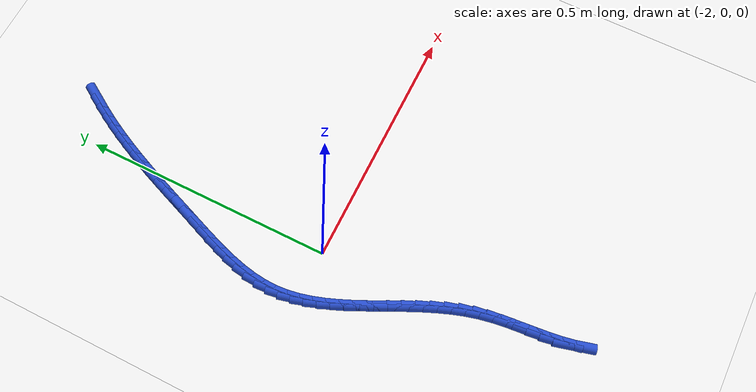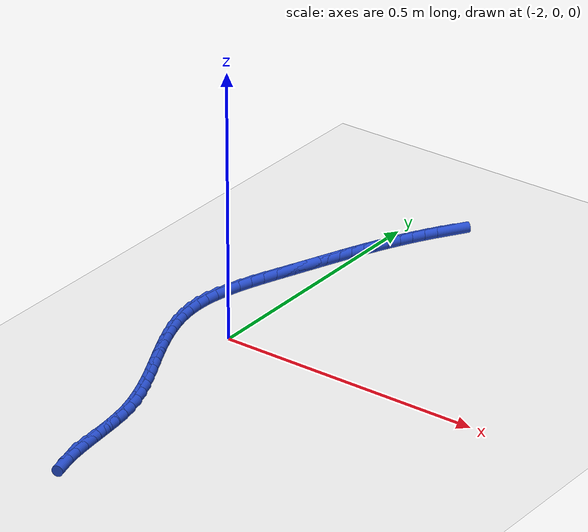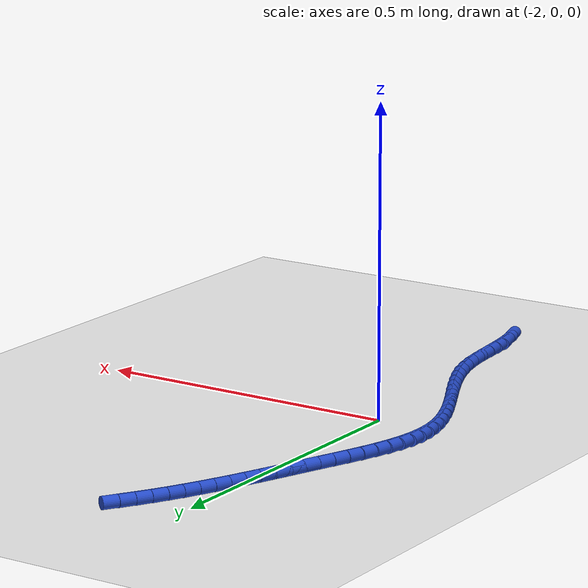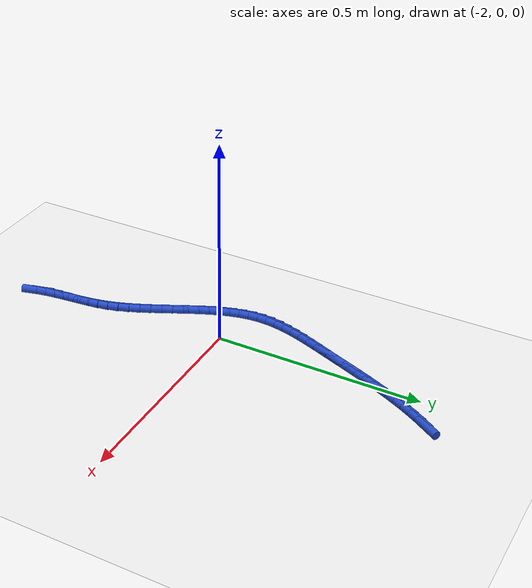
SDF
<sdf version="1.6">
 <world name="default">
  <model name="ground_plane">
   <static>1</static>
   <link name="link">
    <collision name="collision">
     <geometry><plane><normal>0 0 1</normal><size>100 100</size></plane></geometry>
     <surface><friction><ode><mu>100</mu><mu2>50</mu2></ode></friction></surface>
    </collision>
    <visual name="visual">
     <cast_shadows>0</cast_shadows>
     <geometry><plane><normal>0 0 1</normal><size>100 100</size></plane></geometry>
     <material>
      <script><uri>file://media/materials/scripts/gazebo.material</uri><name>Gazebo/WhiteGlow</name></script>
     </material>
    </visual>
   </link>
  </model>
  <model name="line">
   <link name="link_107">
    <pose>-1.918793251084173 0.5393607338823246 0.01 0 1.57 1.006000413616118</pose>
    <collision name="collision">
     <geometry><cylinder><radius>0.01</radius><length>0.08</length></cylinder></geometry>
    </collision>
    <visual name="visual">
     <material>
      <script><name>Gazebo/Blue</name><uri>file://media/materials/scripts/gazebo.material</uri></script>
     </material>
     <geometry><cylinder><radius>0.01</radius><length>0.08</length></cylinder></geometry>
    </visual>
   </link>
   <link name="link_108">
    <pose>-1.9320427246365095 0.5184509923763663 0.01 0 1.57 1.0392437055709665</pose>
    <collision name="collision">
     <geometry><cylinder><radius>0.01</radius><length>0.08</length></cylinder></geometry>
    </collision>
    <visual name="visual">
     <material>
      <script><name>Gazebo/Blue</name><uri>file://media/materials/scripts/gazebo.material</uri></script>
     </material>
     <geometry><cylinder><radius>0.01</radius><length>0.08</length></cylinder></geometry>
    </visual>
   </link>
   <link name="link_109">
    <pose>-1.9446033344854374 0.4970895762051793 0.01 0 1.57 1.069397892536326</pose>
    <collision name="collision">
     <geometry><cylinder><radius>0.01</radius><length>0.08</length></cylinder></geometry>
    </collision>
    <visual name="visual">
     <material>
      <script><name>Gazebo/Blue</name><uri>file://media/materials/scripts/gazebo.material</uri></script>
     </material>
     <geometry><cylinder><radius>0.01</radius><length>0.08</length></cylinder></geometry>
    </visual>
   </link>
   <link name="link_110">
    <pose>-1.9565434428886892 0.4753058143193223 0.01 0 1.57 1.0964002373645325</pose>
    <collision name="collision">
     <geometry><cylinder><radius>0.01</radius><length>0.08</length></cylinder></geometry>
    </collision>
    <visual name="visual">
     <material>
      <script><name>Gazebo/Blue</name><uri>file://media/materials/scripts/gazebo.material</uri></script>
     </material>
     <geometry><cylinder><radius>0.01</radius><length>0.08</length></cylinder></geometry>
    </visual>
   </link>
   <link name="link_111">
    <pose>-1.967931412103998 0.45312903566935486 0.01 0 1.57 1.1202243368676432</pose>
    <collision name="collision">
     <geometry><cylinder><radius>0.01</radius><length>0.08</length></cylinder></geometry>
    </collision>
    <visual name="visual">
     <material>
      <script><name>Gazebo/Blue</name><uri>file://media/materials/scripts/gazebo.material</uri></script>
     </material>
     <geometry><cylinder><radius>0.01</radius><length>0.08</length></cylinder></geometry>
    </visual>
   </link>
   <link name="link_112">
    <pose>-1.9788356043890953 0.4305885692058356 0.01 0 1.57 1.140872114245672</pose>
    <collision name="collision">
     <geometry><cylinder><radius>0.01</radius><length>0.08</length></cylinder></geometry>
    </collision>
    <visual name="visual">
     <material>
      <script><name>Gazebo/Blue</name><uri>file://media/materials/scripts/gazebo.material</uri></script>
     </material>
     <geometry><cylinder><radius>0.01</radius><length>0.08</length></cylinder></geometry>
    </visual>
   </link>
   <link name="link_113">
    <pose>-1.9893243820017144 0.4077137438793232 0.01 0 1.57 1.1583663851227726</pose>
    <collision name="collision">
     <geometry><cylinder><radius>0.01</radius><length>0.08</length></cylinder></geometry>
    </collision>
    <visual name="visual">
     <material>
      <script><name>Gazebo/Blue</name><uri>file://media/materials/scripts/gazebo.material</uri></script>
     </material>
     <geometry><cylinder><radius>0.01</radius><length>0.08</length></cylinder></geometry>
    </visual>
   </link>
   <link name="link_114">
    <pose>-1.9994661071995878 0.3845338886403765 0.01 0 1.57 1.1727443399577253</pose>
    <collision name="collision">
     <geometry><cylinder><radius>0.01</radius><length>0.08</length></cylinder></geometry>
    </collision>
    <visual name="visual">
     <material>
      <script><name>Gazebo/Blue</name><uri>file://media/materials/scripts/gazebo.material</uri></script>
     </material>
     <geometry><cylinder><radius>0.01</radius><length>0.08</length></cylinder></geometry>
    </visual>
   </link>
   <link name="link_115">
    <pose>-2.009329142240448 0.36107833243955423 0.01 0 1.57 1.1840521106364135</pose>
    <collision name="collision">
     <geometry><cylinder><radius>0.01</radius><length>0.08</length></cylinder></geometry>
    </collision>
    <visual name="visual">
     <material>
      <script><name>Gazebo/Blue</name><uri>file://media/materials/scripts/gazebo.material</uri></script>
     </material>
     <geometry><cylinder><radius>0.01</radius><length>0.08</length></cylinder></geometry>
    </visual>
   </link>
   <link name="link_116">
    <pose>-2.018981849382027 0.3373764042274157 0.01 0 1.57 1.1923404629811332</pose>
    <collision name="collision">
     <geometry><cylinder><radius>0.01</radius><length>0.08</length></cylinder></geometry>
    </collision>
    <visual name="visual">
     <material>
      <script><name>Gazebo/Blue</name><uri>file://media/materials/scripts/gazebo.material</uri></script>
     </material>
     <geometry><cylinder><radius>0.01</radius><length>0.08</length></cylinder></geometry>
    </visual>
   </link>
   <link name="link_117">
    <pose>-2.0284925908820584 0.31345743295451955 0.01 0 1.57 1.197661576549802</pose>
    <collision name="collision">
     <geometry><cylinder><radius>0.01</radius><length>0.08</length></cylinder></geometry>
    </collision>
    <visual name="visual">
     <material>
      <script><name>Gazebo/Blue</name><uri>file://media/materials/scripts/gazebo.material</uri></script>
     </material>
     <geometry><cylinder><radius>0.01</radius><length>0.08</length></cylinder></geometry>
    </visual>
   </link>
   <link name="link_118">
    <pose>-2.037929728998274 0.28935074757142426 0.01 0 1.57 1.2000668296648735</pose>
    <collision name="collision">
     <geometry><cylinder><radius>0.01</radius><length>0.08</length></cylinder></geometry>
    </collision>
    <visual name="visual">
     <material>
      <script><name>Gazebo/Blue</name><uri>file://media/materials/scripts/gazebo.material</uri></script>
     </material>
     <geometry><cylinder><radius>0.01</radius><length>0.08</length></cylinder></geometry>
    </visual>
   </link>
   <link name="link_119">
    <pose>-2.047361625988406 0.26508567702868935 0.01 0 1.57 1.1996311330144207</pose>
    <collision name="collision">
     <geometry><cylinder><radius>0.01</radius><length>0.08</length></cylinder></geometry>
    </collision>
    <visual name="visual">
     <material>
      <script><name>Gazebo/Blue</name><uri>file://media/materials/scripts/gazebo.material</uri></script>
     </material>
     <geometry><cylinder><radius>0.01</radius><length>0.08</length></cylinder></geometry>
    </visual>
   </link>
   <link name="link_120">
    <pose>-2.056855913181903 0.2406915776312176 0.01 0 1.57 1.20052782327781</pose>
    <collision name="collision">
     <geometry><cylinder><radius>0.01</radius><length>0.08</length></cylinder></geometry>
    </collision>
    <visual name="visual">
     <material>
      <script><name>Gazebo/Blue</name><uri>file://media/materials/scripts/gazebo.material</uri></script>
     </material>
     <geometry><cylinder><radius>0.01</radius><length>0.08</length></cylinder></geometry>
    </visual>
   </link>
   <link name="link_121">
    <pose>-2.0663619943500726 0.2162022302456472 0.01 0 1.57 1.211435941647568</pose>
    <collision name="collision">
     <geometry><cylinder><radius>0.01</radius><length>0.08</length></cylinder></geometry>
    </collision>
    <visual name="visual">
     <material>
      <script><name>Gazebo/Blue</name><uri>file://media/materials/scripts/gazebo.material</uri></script>
     </material>
     <geometry><cylinder><radius>0.01</radius><length>0.08</length></cylinder></geometry>
    </visual>
   </link>
   <link name="link_122">
    <pose>-2.075581585088444 0.1916606852493978 0.01 0 1.57 1.2337104875633544</pose>
    <collision name="collision">
     <geometry><cylinder><radius>0.01</radius><length>0.08</length></cylinder></geometry>
    </collision>
    <visual name="visual">
     <material>
      <script><name>Gazebo/Blue</name><uri>file://media/materials/scripts/gazebo.material</uri></script>
     </material>
     <geometry><cylinder><radius>0.01</radius><length>0.08</length></cylinder></geometry>
    </visual>
   </link>
   <link name="link_123">
    <pose>-2.0841852473442866 0.16711115891760464 0.01 0 1.57 1.2679897978094745</pose>
    <collision name="collision">
     <geometry><cylinder><radius>0.01</radius><length>0.08</length></cylinder></geometry>
    </collision>
    <visual name="visual">
     <material>
      <script><name>Gazebo/Blue</name><uri>file://media/materials/scripts/gazebo.material</uri></script>
     </material>
     <geometry><cylinder><radius>0.01</radius><length>0.08</length></cylinder></geometry>
    </visual>
   </link>
   <link name="link_124">
    <pose>-2.0918435430648703 0.1425978675254039 0.01 0 1.57 1.3152420034090673</pose>
    <collision name="collision">
     <geometry><cylinder><radius>0.01</radius><length>0.08</length></cylinder></geometry>
    </collision>
    <visual name="visual">
     <material>
      <script><name>Gazebo/Blue</name><uri>file://media/materials/scripts/gazebo.material</uri></script>
     </material>
     <geometry><cylinder><radius>0.01</radius><length>0.08</length></cylinder></geometry>
    </visual>
   </link>
   <link name="link_125">
    <pose>-2.098227034197465 0.11816502734793072 0.01 0 1.57 1.3766617581028535</pose>
    <collision name="collision">
     <geometry><cylinder><radius>0.01</radius><length>0.08</length></cylinder></geometry>
    </collision>
    <visual name="visual">
     <material>
      <script><name>Gazebo/Blue</name><uri>file://media/materials/scripts/gazebo.material</uri></script>
     </material>
     <geometry><cylinder><radius>0.01</radius><length>0.08</length></cylinder></geometry>
    </visual>
   </link>
   <link name="link_126">
    <pose>-2.103006282689342 0.09385685466032037 0.01 0 1.57 1.4534566661429862</pose>
    <collision name="collision">
     <geometry><cylinder><radius>0.01</radius><length>0.08</length></cylinder></geometry>
    </collision>
    <visual name="visual">
     <material>
      <script><name>Gazebo/Blue</name><uri>file://media/materials/scripts/gazebo.material</uri></script>
     </material>
     <geometry><cylinder><radius>0.01</radius><length>0.08</length></cylinder></geometry>
    </visual>
   </link>
   <link name="link_127">
    <pose>-2.10585185048777 0.06971756573770896 0.01 0 1.57 1.546447447464825</pose>
    <collision name="collision">
     <geometry><cylinder><radius>0.01</radius><length>0.08</length></cylinder></geometry>
    </collision>
    <visual name="visual">
     <material>
      <script><name>Gazebo/Blue</name><uri>file://media/materials/scripts/gazebo.material</uri></script>
     </material>
     <geometry><cylinder><radius>0.01</radius><length>0.08</length></cylinder></geometry>
    </visual>
   </link>
   <link name="link_128">
    <pose>-2.1064345423910544 0.0457913415479876 0.01 0 1.57 -1.4924158110859793</pose>
    <collision name="collision">
     <geometry><cylinder><radius>0.01</radius><length>0.08</length></cylinder></geometry>
    </collision>
    <visual name="visual">
     <material>
      <script><name>Gazebo/Blue</name><uri>file://media/materials/scripts/gazebo.material</uri></script>
     </material>
     <geometry><cylinder><radius>0.01</radius><length>0.08</length></cylinder></geometry>
    </visual>
   </link>
   <link name="link_129">
    <pose>-2.104573849349211 0.022100746110615608 0.01 0 1.57 -1.3986866702521137</pose>
    <collision name="collision">
     <geometry><cylinder><radius>0.01</radius><length>0.08</length></cylinder></geometry>
    </collision>
    <visual name="visual">
     <material>
      <script><name>Gazebo/Blue</name><uri>file://media/materials/scripts/gazebo.material</uri></script>
     </material>
     <geometry><cylinder><radius>0.01</radius><length>0.08</length></cylinder></geometry>
    </visual>
   </link>
   <link name="link_130">
    <pose>-2.100490468640679 -0.001389986509768679 0.01 0 1.57 -1.3183993330269068</pose>
    <collision name="collision">
     <geometry><cylinder><radius>0.01</radius><length>0.08</length></cylinder></geometry>
    </collision>
    <visual name="visual">
     <material>
      <script><name>Gazebo/Blue</name><uri>file://media/materials/scripts/gazebo.material</uri></script>
     </material>
     <geometry><cylinder><radius>0.01</radius><length>0.08</length></cylinder></geometry>
    </visual>
   </link>
   <link name="link_131">
    <pose>-2.094472092748947 -0.02472636244205622 0.01 0 1.57 -1.2520256575604412</pose>
    <collision name="collision">
     <geometry><cylinder><radius>0.01</radius><length>0.08</length></cylinder></geometry>
    </collision>
    <visual name="visual">
     <material>
      <script><name>Gazebo/Blue</name><uri>file://media/materials/scripts/gazebo.material</uri></script>
     </material>
     <geometry><cylinder><radius>0.01</radius><length>0.08</length></cylinder></geometry>
    </visual>
   </link>
   <link name="link_132">
    <pose>-2.0868064141575067 -0.04795388781513795 0.01 0 1.57 -1.1992678554582785</pose>
    <collision name="collision">
     <geometry><cylinder><radius>0.01</radius><length>0.08</length></cylinder></geometry>
    </collision>
    <visual name="visual">
     <material>
      <script><name>Gazebo/Blue</name><uri>file://media/materials/scripts/gazebo.material</uri></script>
     </material>
     <geometry><cylinder><radius>0.01</radius><length>0.08</length></cylinder></geometry>
    </visual>
   </link>
   <link name="link_133">
    <pose>-2.0777811253498455 -0.07111806875790544 0.01 0 1.57 -1.159449536767736</pose>
    <collision name="collision">
     <geometry><cylinder><radius>0.01</radius><length>0.08</length></cylinder></geometry>
    </collision>
    <visual name="visual">
     <material>
      <script><name>Gazebo/Blue</name><uri>file://media/materials/scripts/gazebo.material</uri></script>
     </material>
     <geometry><cylinder><radius>0.01</radius><length>0.08</length></cylinder></geometry>
    </visual>
   </link>
   <link name="link_134">
    <pose>-2.0676839188094562 -0.09426441139924839 0.01 0 1.57 -1.1318014260249172</pose>
    <collision name="collision">
     <geometry><cylinder><radius>0.01</radius><length>0.08</length></cylinder></geometry>
    </collision>
    <visual name="visual">
     <material>
      <script><name>Gazebo/Blue</name><uri>file://media/materials/scripts/gazebo.material</uri></script>
     </material>
     <geometry><cylinder><radius>0.01</radius><length>0.08</length></cylinder></geometry>
    </visual>
   </link>
   <link name="link_135">
    <pose>-2.0568024870198274 -0.11743842186805833 0.01 0 1.57 -1.1156371178057904</pose>
    <collision name="collision">
     <geometry><cylinder><radius>0.01</radius><length>0.08</length></cylinder></geometry>
    </collision>
    <visual name="visual">
     <material>
      <script><name>Gazebo/Blue</name><uri>file://media/materials/scripts/gazebo.material</uri></script>
     </material>
     <geometry><cylinder><radius>0.01</radius><length>0.08</length></cylinder></geometry>
    </visual>
   </link>
   <link name="link_136">
    <pose>-2.0454245224644487 -0.14068560629322618 0.01 0 1.57 -1.1104453393990068</pose>
    <collision name="collision">
     <geometry><cylinder><radius>0.01</radius><length>0.08</length></cylinder></geometry>
    </collision>
    <visual name="visual">
     <material>
      <script><name>Gazebo/Blue</name><uri>file://media/materials/scripts/gazebo.material</uri></script>
     </material>
     <geometry><cylinder><radius>0.01</radius><length>0.08</length></cylinder></geometry>
    </visual>
   </link>
   <link name="link_137">
    <pose>-2.0338377176268114 -0.16405147080364302 0.01 0 1.57 -1.1159270911419517</pose>
    <collision name="collision">
     <geometry><cylinder><radius>0.01</radius><length>0.08</length></cylinder></geometry>
    </collision>
    <visual name="visual">
     <material>
      <script><name>Gazebo/Blue</name><uri>file://media/materials/scripts/gazebo.material</uri></script>
     </material>
     <geometry><cylinder><radius>0.01</radius><length>0.08</length></cylinder></geometry>
    </visual>
   </link>
   <link name="link_138">
    <pose>-2.022329764990405 -0.18758152152819962 0.01 0 1.57 -1.1319969791763789</pose>
    <collision name="collision">
     <geometry><cylinder><radius>0.01</radius><length>0.08</length></cylinder></geometry>
    </collision>
    <visual name="visual">
     <material>
      <script><name>Gazebo/Blue</name><uri>file://media/materials/scripts/gazebo.material</uri></script>
     </material>
     <geometry><cylinder><radius>0.01</radius><length>0.08</length></cylinder></geometry>
    </visual>
   </link>
   <link name="link_139">
    <pose>-2.0111883570387192 -0.21132126459578704 0.01 0 1.57 -1.1587572986363035</pose>
    <collision name="collision">
     <geometry><cylinder><radius>0.01</radius><length>0.08</length></cylinder></geometry>
    </collision>
    <visual name="visual">
     <material>
      <script><name>Gazebo/Blue</name><uri>file://media/materials/scripts/gazebo.material</uri></script>
     </material>
     <geometry><cylinder><radius>0.01</radius><length>0.08</length></cylinder></geometry>
    </visual>
   </link>
   <link name="link_140">
    <pose>-2.0007011862552444 -0.23531620613529688 0.01 0 1.57 -1.1964440623746473</pose>
    <collision name="collision">
     <geometry><cylinder><radius>0.01</radius><length>0.08</length></cylinder></geometry>
    </collision>
    <visual name="visual">
     <material>
      <script><name>Gazebo/Blue</name><uri>file://media/materials/scripts/gazebo.material</uri></script>
     </material>
     <geometry><cylinder><radius>0.01</radius><length>0.08</length></cylinder></geometry>
    </visual>
   </link>
   <link name="link_141">
    <pose>-1.9911559451234702 -0.25961185227561867 0.01 0 1.57 -1.2453371840024048</pose>
    <collision name="collision">
     <geometry><cylinder><radius>0.01</radius><length>0.08</length></cylinder></geometry>
    </collision>
    <visual name="visual">
     <material>
      <script><name>Gazebo/Blue</name><uri>file://media/materials/scripts/gazebo.material</uri></script>
     </material>
     <geometry><cylinder><radius>0.01</radius><length>0.08</length></cylinder></geometry>
    </visual>
   </link>
   <link name="link_142">
    <pose>-1.9828403261268872 -0.2842537091456441 0.01 0 1.57 -1.3056241002821969</pose>
    <collision name="collision">
     <geometry><cylinder><radius>0.01</radius><length>0.08</length></cylinder></geometry>
    </collision>
    <visual name="visual">
     <material>
      <script><name>Gazebo/Blue</name><uri>file://media/materials/scripts/gazebo.material</uri></script>
     </material>
     <geometry><cylinder><radius>0.01</radius><length>0.08</length></cylinder></geometry>
    </visual>
   </link>
   <link name="link_143">
    <pose>-1.9760420217489858 -0.309287282874264 0.01 0 1.57 -1.3739306788825119</pose>
    <collision name="collision">
     <geometry><cylinder><radius>0.01</radius><length>0.08</length></cylinder></geometry>
    </collision>
    <visual name="visual">
     <material>
      <script><name>Gazebo/Blue</name><uri>file://media/materials/scripts/gazebo.material</uri></script>
     </material>
     <geometry><cylinder><radius>0.01</radius><length>0.08</length></cylinder></geometry>
    </visual>
   </link>
   <link name="link_144">
    <pose>-1.9709665910606577 -0.3347345499066623 0.01 0 1.57 -1.4290374486334316</pose>
    <collision name="collision">
     <geometry><cylinder><radius>0.01</radius><length>0.08</length></cylinder></geometry>
    </collision>
    <visual name="visual">
     <material>
      <script><name>Gazebo/Blue</name><uri>file://media/materials/scripts/gazebo.material</uri></script>
     </material>
     <geometry><cylinder><radius>0.01</radius><length>0.08</length></cylinder></geometry>
    </visual>
   </link>
   <link name="link_145">
    <pose>-1.9672941605660041 -0.36046696010310203 0.01 0 1.57 -1.4629578933713077</pose>
    <collision name="collision">
     <geometry><cylinder><radius>0.01</radius><length>0.08</length></cylinder></geometry>
    </collision>
    <visual name="visual">
     <material>
      <script><name>Gazebo/Blue</name><uri>file://media/materials/scripts/gazebo.material</uri></script>
     </material>
     <geometry><cylinder><radius>0.01</radius><length>0.08</length></cylinder></geometry>
    </visual>
   </link>
   <link name="link_146">
    <pose>-1.9644978775117683 -0.38629666764495574 0.01 0 1.57 -1.475992719123873</pose>
    <collision name="collision">
     <geometry><cylinder><radius>0.01</radius><length>0.08</length></cylinder></geometry>
    </collision>
    <visual name="visual">
     <material>
      <script><name>Gazebo/Blue</name><uri>file://media/materials/scripts/gazebo.material</uri></script>
     </material>
     <geometry><cylinder><radius>0.01</radius><length>0.08</length></cylinder></geometry>
    </visual>
   </link>
   <link name="link_147">
    <pose>-1.9620503891070467 -0.4120356834621796 0.01 0 1.57 -1.4680171128048933</pose>
    <collision name="collision">
     <geometry><cylinder><radius>0.01</radius><length>0.08</length></cylinder></geometry>
    </collision>
    <visual name="visual">
     <material>
      <script><name>Gazebo/Blue</name><uri>file://media/materials/scripts/gazebo.material</uri></script>
     </material>
     <geometry><cylinder><radius>0.01</radius><length>0.08</length></cylinder></geometry>
    </visual>
   </link>
   <link name="link_148">
    <pose>-1.9594243425609368 -0.43749601848472996 0.01 0 1.57 -1.4382656770695885</pose>
    <collision name="collision">
     <geometry><cylinder><radius>0.01</radius><length>0.08</length></cylinder></geometry>
    </collision>
    <visual name="visual">
     <material>
      <script><name>Gazebo/Blue</name><uri>file://media/materials/scripts/gazebo.material</uri></script>
     </material>
     <geometry><cylinder><radius>0.01</radius><length>0.08</length></cylinder></geometry>
    </visual>
   </link>
   <link name="link_149">
    <pose>-1.956092385082534 -0.4624896836425637 0.01 0 1.57 -1.3853825885180282</pose>
    <collision name="collision">
     <geometry><cylinder><radius>0.01</radius><length>0.08</length></cylinder></geometry>
    </collision>
    <visual name="visual">
     <material>
      <script><name>Gazebo/Blue</name><uri>file://media/materials/scripts/gazebo.material</uri></script>
     </material>
     <geometry><cylinder><radius>0.01</radius><length>0.08</length></cylinder></geometry>
    </visual>
   </link>
   <link name="link_150">
    <pose>-1.9515271638809353 -0.4868286898656355 0.01 0 1.57 -1.307805757167191</pose>
    <collision name="collision">
     <geometry><cylinder><radius>0.01</radius><length>0.08</length></cylinder></geometry>
    </collision>
    <visual name="visual">
     <material>
      <script><name>Gazebo/Blue</name><uri>file://media/materials/scripts/gazebo.material</uri></script>
     </material>
     <geometry><cylinder><radius>0.01</radius><length>0.08</length></cylinder></geometry>
    </visual>
   </link>
  </model>
 </world>
</sdf>
